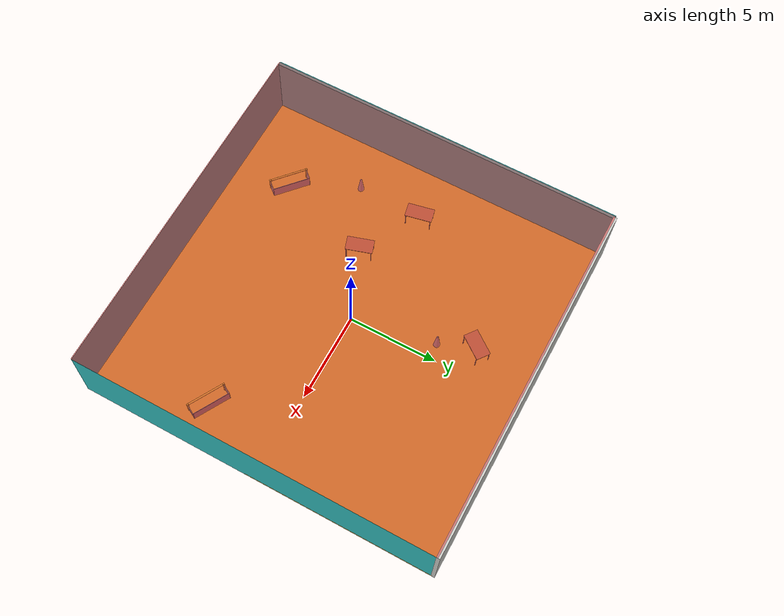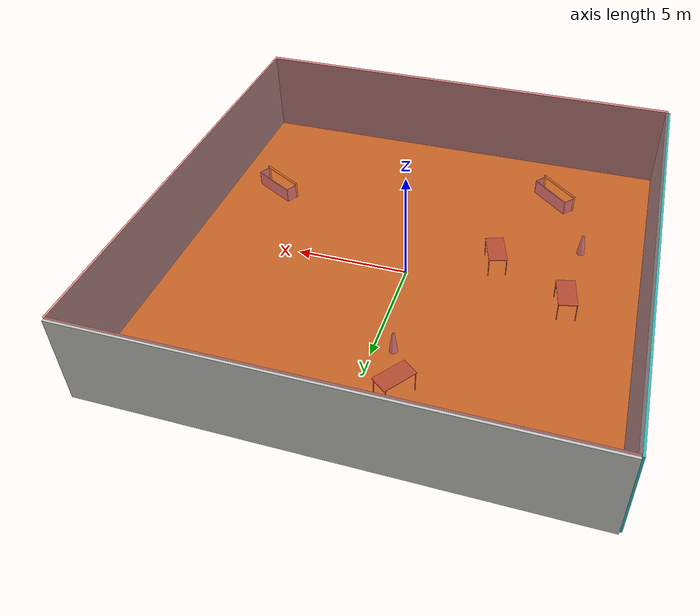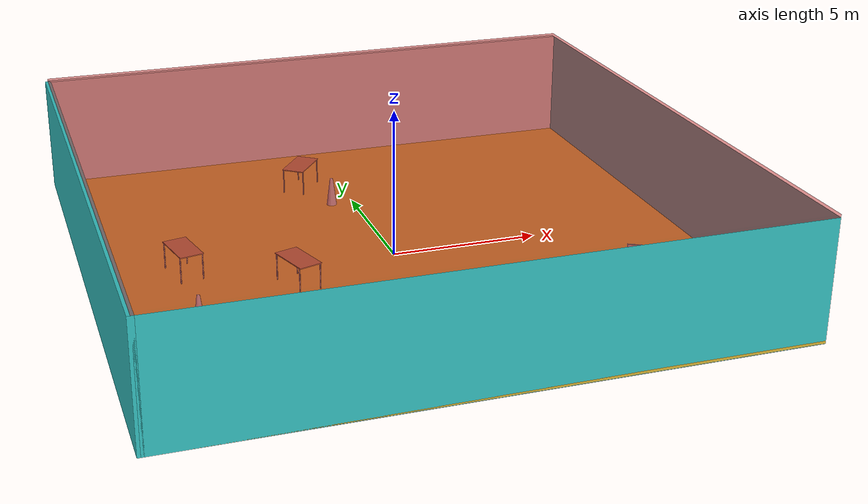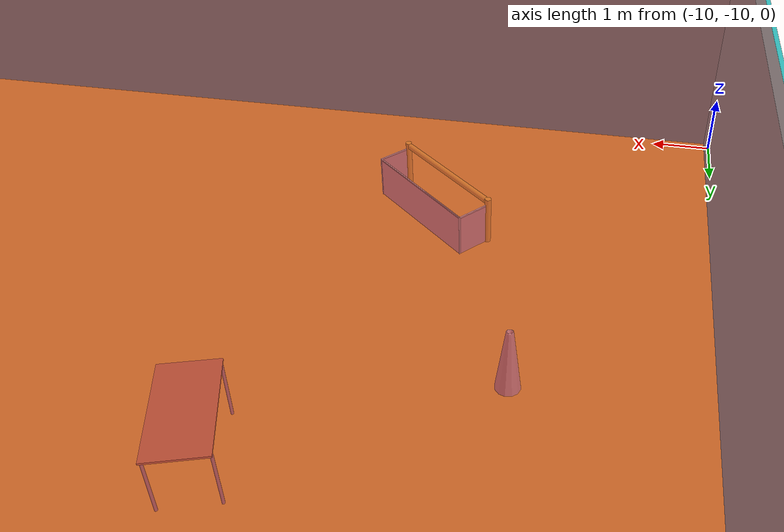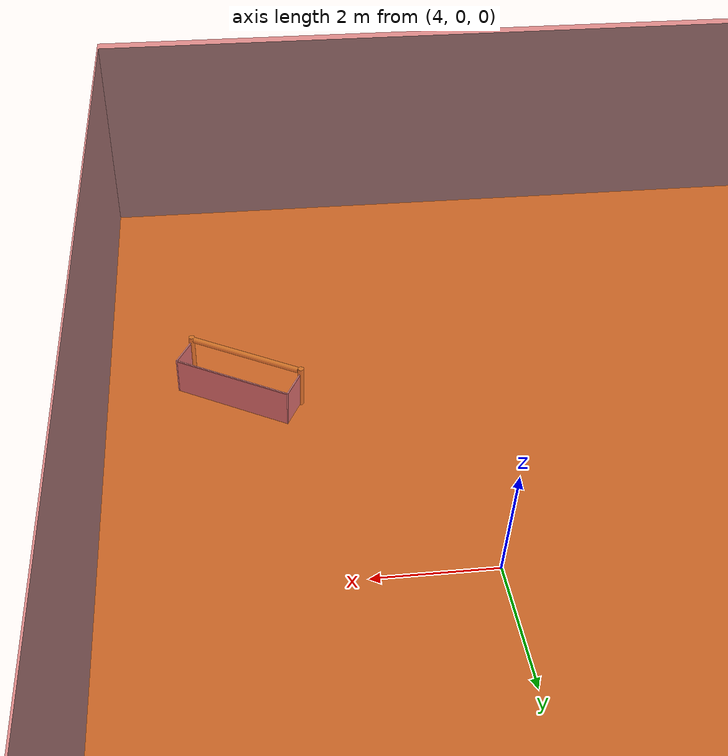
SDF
<sdf version="1.4">
 <world name="default">
  <physics type="ode">
   <max_step_size>0.001</max_step_size>
   <real_time_factor>1</real_time_factor>
   <real_time_update_rate>1000</real_time_update_rate>
   <gravity>0 0 -9.8</gravity>
  </physics>
  <scene><ambient>0.4 0.4 0.4 1</ambient><background>0.7 0.7 0.7 1</background><shadows>1</shadows></scene>
  <model name="Surrounding">
   <static>1</static>
   <link name="Ceiling">
    <collision name="Ceiling_Collision"><geometry><box><size>20 20 0.1</size></box></geometry></collision>
    <visual name="Ceiling_Visual">
     <geometry><box><size>20 20 0.1</size></box></geometry>
     <material>
      <script><uri>file://media/materials/scripts/gazebo.material</uri><name>Gazebo/RedTransparent</name></script>
     </material>
    </visual>
    <pose>0 0 4.05 0 0 0</pose>
   </link>
   <link name="Wall_South">
    <collision name="Wall_South_Collision">
     <geometry><box><size>20 0 4</size></box></geometry>
     <pose>0 0 2 0 -0 0</pose>
    </collision>
    <visual name="Wall_South_Visual">
     <pose>0 0 2 0 -0 0</pose>
     <geometry><box><size>20 0 4</size></box></geometry>
     <material>
      <script><uri>file://media/materials/scripts/gazebo.material</uri><name>Gazebo/TurquoiseGlow</name></script>
     </material>
    </visual>
    <velocity_decay><linear>0</linear><angular>0</angular></velocity_decay>
    <pose>0 -10 0 0 -0 0</pose>
   </link>
   <link name="Wall_East">
    <collision name="Wall_21_Collision">
     <geometry><box><size>20 0 4</size></box></geometry>
     <pose>0 0 2 0 -0 0</pose>
    </collision>
    <visual name="Wall_21_Visual">
     <pose>0 0 2 0 -0 0</pose>
     <geometry><box><size>20 0 4</size></box></geometry>
     <material>
      <script><uri>file://media/materials/scripts/gazebo.material</uri><name>Gazebo/TurquoiseGlow</name></script>
     </material>
    </visual>
    <velocity_decay><linear>0</linear><angular>0</angular></velocity_decay>
    <pose>10 0 0 0 -0 1.5708</pose>
   </link>
   <link name="Wall_North">
    <collision name="Wall_22_Collision">
     <geometry><box><size>20 0.2 4</size></box></geometry>
     <pose>0 0 2 0 -0 0</pose>
    </collision>
    <visual name="Wall_22_Visual">
     <pose>0 0 2 0 -0 0</pose>
     <geometry><box><size>20 0.2 4</size></box></geometry>
     <material>
      <script><uri>file://media/materials/scripts/gazebo.material</uri><name>Gazebo/CeilingTiled</name></script>
     </material>
    </visual>
    <velocity_decay><linear>0</linear><angular>0</angular></velocity_decay>
    <pose>0 10 0 0 -0 0</pose>
   </link>
   <link name="Wall_West">
    <collision name="Wall_23_Collision">
     <geometry><box><size>20 0.2 4</size></box></geometry>
     <pose>0 0 2 0 -0 0</pose>
    </collision>
    <visual name="Wall_23_Visual">
     <pose>0 0 2 0 -0 0</pose>
     <geometry><box><size>20 0.2 4</size></box></geometry>
     <material>
      <script><uri>file://media/materials/scripts/gazebo.material</uri><name>Gazebo/Turquoise</name></script>
     </material>
    </visual>
    <velocity_decay><linear>0</linear><angular>0</angular></velocity_decay>
    <pose>-10 0 0 0 0 -1.5708</pose>
   </link>
   <link name="Ground_link">
    <collision name="collision">
     <pose>0 0 .05 0 -0 0</pose>
     <geometry><box><size>20 20 0.1</size></box></geometry>
    </collision>
    <visual name="visual">
     <pose>0 0 .05 0 -0 0</pose>
     <geometry><box><size>20 20 0.1</size></box></geometry>
     <material>
      <script><uri>file://media/materials/scripts/gazebo.material</uri><name>Gazebo/Gold</name></script>
     </material>
    </visual>
   </link>
   <static>1</static>
  </model>
  <spherical_coordinates>
   <surface_model>EARTH_WGS84</surface_model>
   <latitude_deg>0</latitude_deg>
   <longitude_deg>0</longitude_deg>
   <elevation>0</elevation>
   <heading_deg>0</heading_deg>
  </spherical_coordinates>
  <light name="lightball_0" type="diffuse">
   <diffuse>0.8 0.8 0.8 1</diffuse>
   <specular>0.2 0.2 0.2 1</specular>
   <attenuation>
    <range>100</range>
    <constant>0.7</constant>
    <linear>0.01</linear>
    <quadratic>0.001</quadratic>
   </attenuation>
   <direction>-0.5 0.1 -0.9</direction>
   <pose>8.38380966852 0.592330273433 0.915708612241 0 0 0</pose>
  </light>
  <light name="lightball_1" type="diffuse">
   <diffuse>0.8 0.8 0.8 1</diffuse>
   <specular>0.2 0.2 0.2 1</specular>
   <attenuation>
    <range>100</range>
    <constant>0.7</constant>
    <linear>0.01</linear>
    <quadratic>0.001</quadratic>
   </attenuation>
   <direction>-0.5 0.1 -0.9</direction>
   <pose>4.99826187501 -1.25355665169 0.668335905348 0 0 0</pose>
  </light>
  <light name="lightball_2" type="diffuse">
   <diffuse>0.8 0.8 0.8 1</diffuse>
   <specular>0.2 0.2 0.2 1</specular>
   <attenuation>
    <range>100</range>
    <constant>0.7</constant>
    <linear>0.01</linear>
    <quadratic>0.001</quadratic>
   </attenuation>
   <direction>-0.5 0.1 -0.9</direction>
   <pose>3.99178777594 -3.63395158083 2.98919554734 0 0 0</pose>
  </light>
  <light name="lightball_3" type="diffuse">
   <diffuse>0.8 0.8 0.8 1</diffuse>
   <specular>0.2 0.2 0.2 1</specular>
   <attenuation>
    <range>100</range>
    <constant>0.7</constant>
    <linear>0.01</linear>
    <quadratic>0.001</quadratic>
   </attenuation>
   <direction>-0.5 0.1 -0.9</direction>
   <pose>-0.327469194166 -6.19673290175 0.634374768541 0 0 0</pose>
  </light>
  <light name="lightball_4" type="diffuse">
   <diffuse>0.8 0.8 0.8 1</diffuse>
   <specular>0.2 0.2 0.2 1</specular>
   <attenuation>
    <range>100</range>
    <constant>0.7</constant>
    <linear>0.01</linear>
    <quadratic>0.001</quadratic>
   </attenuation>
   <direction>-0.5 0.1 -0.9</direction>
   <pose>0.800914957373 -2.79381292686 2.43998095383 0 0 0</pose>
  </light>
  <include>
   <uri>model://construction_cone</uri>
   <pose>-7.19189099821 -3.33408704916 0 0 0 1.51596735089</pose>
  </include>
  <include><uri>model://table</uri><pose>-6.96320472774 0.4264119552 0 0 0 1.7788919567</pose></include>
  <include>
   <uri>model://robocup_3Dsim_goal</uri>
   <pose>-5.64019022393 -7.09349394617 0 0 0 0.849536058738</pose>
  </include>
  <include><uri>model://table</uri><pose>-3.65675668318 -1.48476337643 0 0 0 1.88034025734</pose></include>
  <include>
   <uri>model://construction_cone</uri>
   <pose>-0.842585713294 4.65290454354 0 0 0 0.666238785121</pose>
  </include>
  <include><uri>model://table</uri><pose>-1.47854464971 6.60799492531 0 0 0 0.92839580039</pose></include>
  <include>
   <uri>model://robocup_3Dsim_goal</uri>
   <pose>7.56195078171 -4.26570151144 0 0 0 1.06420149498</pose>
  </include>
 </world>
</sdf>

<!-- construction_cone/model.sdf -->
<sdf version="1.5">
  <model name="Construction Cone">
    <link name="link">
      <collision name="collision">
        <geometry>
          <mesh>
            <scale>10 10 10</scale>
            <uri>file://isr-testbed/construction_cone/meshes/construction_cone.dae</uri>
          </mesh>
        </geometry>
      </collision>
      <visual name="visual">
        <geometry>
          <mesh>
            <scale>10 10 10</scale>
            <uri>file://isr-testbed/construction_cone/meshes/construction_cone.dae</uri>
          </mesh>
        </geometry>
      </visual>
    </link>
  </model>
</sdf>

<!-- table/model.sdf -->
<sdf version="1.5">
  <model name="table">
    <static>true</static>
    <link name="link">
      <collision name="surface">
        <pose>0 0 1.0 0 0 0</pose>
        <geometry>
          <box>
            <size>1.5 0.8 0.03</size>
          </box>
        </geometry>
        <surface>
          <friction>
            <ode>
              <mu>0.6</mu>
              <mu2>0.6</mu2>
            </ode>
          </friction>
        </surface>
      </collision>
      <visual name="visual1">
        <pose>0 0 1.0 0 0 0</pose>
        <geometry>
          <box>
            <size>1.5 0.8 0.03</size>
          </box>
        </geometry>
        <material>
          <script>
            <uri>model://media/materials/scripts/gazebo.material</uri>
            <name>Gazebo/Wood</name>
          </script>
        </material>
      </visual>
      <collision name="front_left_leg">
        <pose>0.68 0.38 0.5 0 0 0</pose>
        <geometry>
          <cylinder>
            <radius>0.02</radius>
            <length>1.0</length>
          </cylinder>
        </geometry>
      </collision>
      <visual name="front_left_leg">
        <pose>0.68 0.38 0.5 0 0 0</pose>
        <geometry>
          <cylinder>
            <radius>0.02</radius>
            <length>1.0</length>
          </cylinder>
        </geometry>
        <material>
          <script>
            <uri>model://media/materials/scripts/gazebo.material</uri>
            <name>Gazebo/Grey</name>
          </script>
        </material>
      </visual>
      <collision name="front_right_leg">
        <pose>0.68 -0.38 0.5 0 0 0</pose>
        <geometry>
          <cylinder>
            <radius>0.02</radius>
            <length>1.0</length>
          </cylinder>
        </geometry>
      </collision>
      <visual name="front_right_leg">
        <pose>0.68 -0.38 0.5 0 0 0</pose>
        <geometry>
          <cylinder>
            <radius>0.02</radius>
            <length>1.0</length>
          </cylinder>
        </geometry>
        <material>
          <script>
            <uri>model://media/materials/scripts/gazebo.material</uri>
            <name>Gazebo/Grey</name>
          </script>
        </material>
      </visual>
      <collision name="back_right_leg">
        <pose>-0.68 -0.38 0.5 0 0 0</pose>
        <geometry>
          <cylinder>
            <radius>0.02</radius>
            <length>1.0</length>
          </cylinder>
        </geometry>
      </collision>
      <visual name="back_right_leg">
        <pose>-0.68 -0.38 0.5 0 0 0</pose>
        <geometry>
          <cylinder>
            <radius>0.02</radius>
            <length>1.0</length>
          </cylinder>
        </geometry>
        <material>
          <script>
            <uri>model://media/materials/scripts/gazebo.material</uri>
            <name>Gazebo/Grey</name>
          </script>
        </material>
      </visual>
      <collision name="back_left_leg">
        <pose>-0.68 0.38 0.5 0 0 0</pose>
        <geometry>
          <cylinder>
            <radius>0.02</radius>
            <length>1.0</length>
          </cylinder>
        </geometry>
      </collision>
      <visual name="back_left_leg">
        <pose>-0.68 0.38 0.5 0 0 0</pose>
        <geometry>
          <cylinder>
            <radius>0.02</radius>
            <length>1.0</length>
          </cylinder>
        </geometry>
        <material>
          <script>
            <uri>model://media/materials/scripts/gazebo.material</uri>
            <name>Gazebo/Grey</name>
          </script>
        </material>
      </visual>
    </link>
  </model>
</sdf>

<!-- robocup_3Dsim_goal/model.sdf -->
<sdf version="1.5">
  <model name="robocup_3d_goal">
    <static>true</static>
    <link name="left_post">
      <pose>0 1.05 0.45 0 0 0</pose>
      <collision name="collision">
        <geometry>
          <cylinder>
            <radius>0.05</radius>
            <length>0.9</length>
          </cylinder>
        </geometry>
      </collision>
      <visual name="visual">
        <geometry>
          <cylinder>
            <radius>0.05</radius>
            <length>0.9</length>
          </cylinder>
        </geometry>
        <material>
          <script>
            <uri>file://media/materials/scripts/gazebo.material</uri>
            <name>Gazebo/ZincYellow</name>
          </script>
        </material>
      </visual>
    </link>
    <link name="left_support_horiz_lower">
      <pose>0.30 1.05 0.01 0 0 0</pose>
      <collision name="collision">
        <geometry>
          <box>
            <size>0.50 0.02 0.02</size>
          </box>
        </geometry>
      </collision>
      <visual name="visual">
        <geometry>
          <box>
            <size>0.50 0.02 0.02</size>
          </box>
        </geometry>
        <material>
          <script>
            <uri>file://media/materials/scripts/gazebo.material</uri>
            <name>Gazebo/White</name>
          </script>
        </material>
      </visual>
    </link>
    <link name="left_support_horiz_upper">
      <pose>0.30 1.05 0.79 0 0 0</pose>
      <collision name="collision">
        <geometry>
          <box>
            <size>0.50 0.02 0.02</size>
          </box>
        </geometry>
      </collision>
      <visual name="visual">
        <geometry>
          <box>
            <size>0.50 0.02 0.02</size>
          </box>
        </geometry>
        <material>
          <script>
            <uri>file://media/materials/scripts/gazebo.material</uri>
            <name>Gazebo/White</name>
          </script>
        </material>
      </visual>
    </link>
    <link name="left_support_vertical">
      <pose>0.56 1.05 0.4 0 1.5708 0</pose>
      <collision name="collision">
        <geometry>
          <box>
            <size>0.80 0.02 0.02</size>
          </box>
        </geometry>
      </collision>
      <visual name="visual">
        <geometry>
          <box>
            <size>0.80 0.02 0.02</size>
          </box>
        </geometry>
        <material>
          <script>
            <uri>file://media/materials/scripts/gazebo.material</uri>
            <name>Gazebo/White</name>
          </script>
        </material>
      </visual>
    </link>
    <link name="right_support_horiz_lower">
      <pose>0.30 -1.05 0.01 0 0 0</pose>
      <collision name="collision">
        <geometry>
          <box>
            <size>0.50 0.02 0.02</size>
          </box>
        </geometry>
      </collision>
      <visual name="visual">
        <geometry>
          <box>
            <size>0.50 0.02 0.02</size>
          </box>
        </geometry>
        <material>
          <script>
            <uri>file://media/materials/scripts/gazebo.material</uri>
            <name>Gazebo/White</name>
          </script>
        </material>
      </visual>
    </link>
    <link name="right_support_horiz_upper">
      <pose>0.30 -1.05 0.79 0 0 0</pose>
      <collision name="collision">
        <geometry>
          <box>
            <size>0.50 0.02 0.02</size>
          </box>
        </geometry>
      </collision>
      <visual name="visual">
        <geometry>
          <box>
            <size>0.50 0.02 0.02</size>
          </box>
        </geometry>
        <material>
          <script>
            <uri>file://media/materials/scripts/gazebo.material</uri>
            <name>Gazebo/White</name>
          </script>
        </material>
      </visual>
    </link>
    <link name="right_support_vertical">
      <pose>0.56 -1.05 0.4 0 1.5708 0</pose>
      <collision name="collision">
        <geometry>
          <box>
            <size>0.80 0.02 0.02</size>
          </box>
        </geometry>
      </collision>
      <visual name="visual">
        <geometry>
          <box>
            <size>0.80 0.02 0.02</size>
          </box>
        </geometry>
        <material>
          <script>
            <uri>file://media/materials/scripts/gazebo.material</uri>
            <name>Gazebo/White</name>
          </script>
        </material>
      </visual>
    </link>
    <link name="center_support_horiz_lower">
      <pose>0.56 0 0.01 0 1.5708 0</pose>
      <collision name="collision">
        <geometry>
          <box>
            <size>0.02 2.08 0.02</size>
          </box>
        </geometry>
      </collision>
      <visual name="visual">
        <geometry>
          <box>
            <size>0.02 2.08 0.02</size>
          </box>
        </geometry>
        <material>
          <script>
            <uri>file://media/materials/scripts/gazebo.material</uri>
            <name>Gazebo/White</name>
          </script>
        </material>
      </visual>
    </link>
    <link name="center_support_horiz_upper">
      <pose>0.56 0 0.79 0 1.5708 0</pose>
      <collision name="collision">
        <geometry>
          <box>
            <size>0.02 2.08 0.02</size>
          </box>
        </geometry>
      </collision>
      <visual name="visual">
        <geometry>
          <box>
            <size>0.02 2.08 0.02</size>
          </box>
        </geometry>
        <material>
          <script>
            <uri>file://media/materials/scripts/gazebo.material</uri>
            <name>Gazebo/White</name>
          </script>
        </material>
      </visual>
    </link>
    <link name="right_post">
      <pose>0 -1.05 0.45 0 0 0</pose>
      <collision name="collision">
        <geometry>
          <cylinder>
            <radius>0.05</radius>
            <length>0.9</length>
          </cylinder>
        </geometry>
      </collision>
      <visual name="visual">
        <geometry>
          <cylinder>
            <radius>0.05</radius>
            <length>0.9</length>
          </cylinder>
        </geometry>
        <material>
          <script>
            <uri>file://media/materials/scripts/gazebo.material</uri>
            <name>Gazebo/ZincYellow</name>
          </script>
        </material>
      </visual>
    </link>
    <link name="crossbar">
      <pose>0 0 0.85 1.57 1.57 0</pose>
      <collision name="collision">
        <geometry>
          <cylinder>
            <radius>0.05</radius>
            <length>2.0</length>
          </cylinder>
        </geometry>
      </collision>
      <visual name="visual">
        <geometry>
          <cylinder>
            <radius>0.05</radius>
            <length>2.0</length>
          </cylinder>
        </geometry>
        <material>
          <script>
            <uri>file://media/materials/scripts/gazebo.material</uri>
            <name>Gazebo/ZincYellow</name>
          </script>
        </material>
      </visual>
    </link>
    <link name="center_net">
      <pose>0.56 0 0.40 0 0 0</pose>
      <collision name="collision">
        <geometry>
          <box>
            <size>0.01 2.1 0.80</size>
          </box>
        </geometry>
      </collision>
      <visual name="visual">
        <geometry>
          <box>
            <size>0.01 2.1 0.80</size>
          </box>
        </geometry>
        <material>
          <script>
            <uri>model://../model_source/models/robocup09_spl_field/materials/scripts/</uri>
            <uri>model://../model_source/models/robocup09_spl_field/materials/textures/</uri>
            <name>RoboCup/Net</name>
          </script>
        </material>
      </visual>
    </link>
    <link name="left_net">
      <pose>0.30 1.05 0.40 0 0 0</pose>
      <collision name="collision">
        <geometry>
          <box>
            <size>0.50 0.01 0.76</size>
          </box>
        </geometry>
      </collision>
      <visual name="visual">
        <geometry>
          <box>
            <size>0.50 0.01 0.76</size>
          </box>
        </geometry>
        <material>
          <script>
            <uri>model://../model_source/models/robocup09_spl_field/materials/scripts/</uri>
            <uri>model://../model_source/models/robocup09_spl_field/materials/textures/</uri>
            <name>RoboCup/Net</name>
          </script>
        </material>
      </visual>
    </link>
    <link name="right_net">
      <pose>0.30 -1.05 0.40 0 0 0</pose>
      <collision name="collision">
        <geometry>
          <box>
            <size>0.50 0.01 0.76</size>
          </box>
        </geometry>
      </collision>
      <visual name="visual">
        <geometry>
          <box>
            <size>0.50 0.01 0.76</size>
          </box>
        </geometry>
        <material>
          <script>
            <uri>model://../model_source/models/robocup09_spl_field/materials/scripts/</uri>
            <uri>model://../model_source/models/robocup09_spl_field/materials/textures/</uri>
            <name>RoboCup/Net</name>
          </script>
        </material>
      </visual>
    </link>
  </model>
</sdf>
